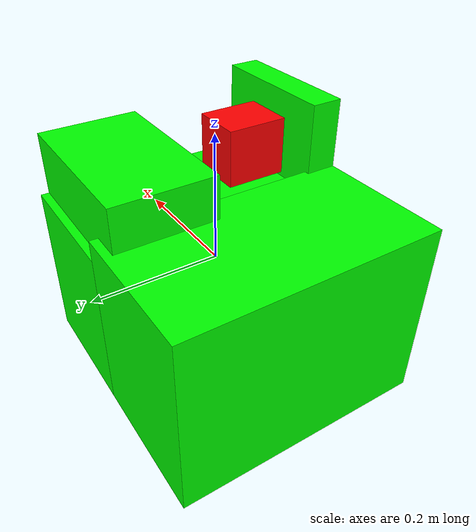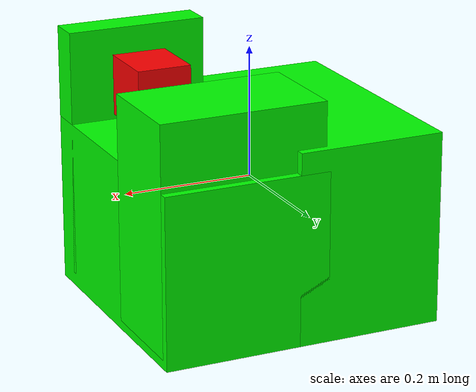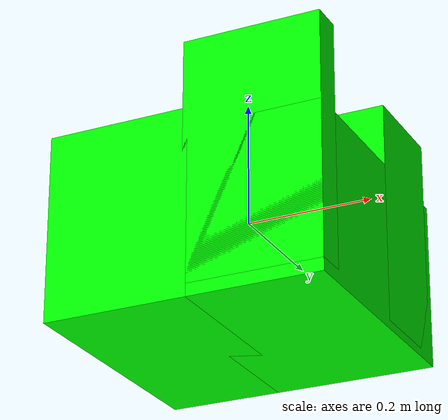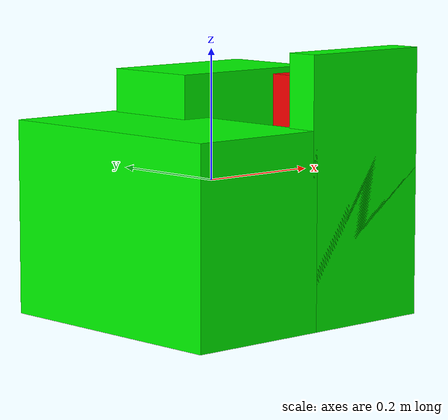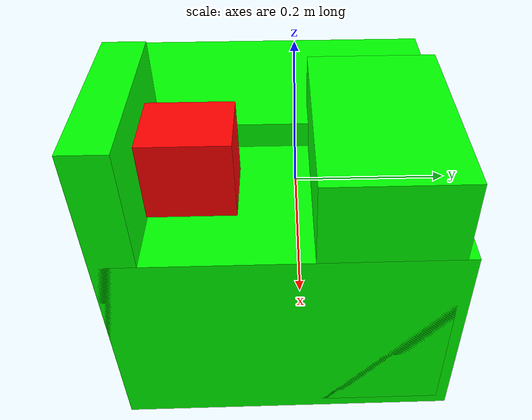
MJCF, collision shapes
<mujoco model="coffee_machine_25">
  <compiler autolimits="true" boundmass="0.01" angle="radian"/>
  <default>
    <default class="/">
      <default class="__VISUAL_MJT__">
        <geom contype="0" conaffinity="0" group="0"/>
      </default>
      <default class="__STRUCTURAL_MJT__">
        <geom contype="8" conaffinity="15" group="4" friction="0.90000000000000002 0.90000000000000002 0.001" solref="0.025000000000000001 1" solimp="0.998 0.998 0.001"/>
      </default>
      <default class="__DYNAMIC_MJT__">
        <geom contype="1" conaffinity="15" group="4" friction="0.90000000000000002 0.90000000000000002 0.001" solref="0.025000000000000001 1" solimp="0.998 0.998 0.001"/>
      </default>
    </default>
  </default>
  <asset>
    <material name="material_coffee_machine_backup_mat" class="/" specular="0.5" shininess="0.5" rgba="0.5 0.5 0.5 1"/>
    <material name="material_Coffee_Machine_Readout_Mat_Off" class="/" specular="0.5" shininess="0.5" rgba="0 0 0 1"/>
    <texture name="Coffee_Machine_Decal_Mat" type="2d" file="Coffee_Machine_Decal_AlbedoTransparency.png"/>
    <material name="material_Coffee_Machine_Decal_Mat" class="/" texture="Coffee_Machine_Decal_Mat" specular="0.5" shininess="0.5" rgba="1 1 1 1"/>
    <texture name="Coffee_Machine_Metal_Mat" type="2d" file="MetalBumpy_AlbedoTransparency.png"/>
    <material name="material_Coffee_Machine_Metal_Mat" class="/" texture="Coffee_Machine_Metal_Mat" specular="0.5" shininess="0.5" rgba="0.66176469999999998 0.66176469999999998 0.66176469999999998 1"/>
    <texture name="Coffee_Machine_Secondary5_Color_Mat" type="2d" file="BrushedIron_AlbedoTransparency.png"/>
    <material name="material_Coffee_Machine_Secondary5_Color_Mat" class="/" texture="Coffee_Machine_Secondary5_Color_Mat" specular="0.5" shininess="0.5" rgba="0.55147060000000003 0.55147060000000003 0.55147060000000003 1"/>
    <texture name="Coffee_Machine_Primary5_Color_Mat" type="2d" file="BrushedAluminum_AlbedoTransparency.png"/>
    <material name="material_Coffee_Machine_Primary5_Color_Mat" class="/" texture="Coffee_Machine_Primary5_Color_Mat" specular="0.5" shininess="0.5" rgba="0.32352940000000002 0.32352940000000002 0.32352940000000002 1"/>
    <mesh name="coffee_machine_25_coffee_machine_25_0" class="/" file="coffee_machine_25_coffee_machine_25/coffee_machine_25_coffee_machine_25_0.obj" scale="1 1 1"/>
    <mesh name="coffee_machine_25_coffee_machine_25_1" class="/" file="coffee_machine_25_coffee_machine_25/coffee_machine_25_coffee_machine_25_1.obj" scale="1 1 1"/>
    <mesh name="coffee_machine_25_coffee_machine_25_2" class="/" file="coffee_machine_25_coffee_machine_25/coffee_machine_25_coffee_machine_25_2.obj" scale="1 1 1"/>
    <mesh name="coffee_machine_25_coffee_machine_25_3" class="/" file="coffee_machine_25_coffee_machine_25/coffee_machine_25_coffee_machine_25_3.obj" scale="1 1 1"/>
    <mesh name="coffee_machine_25_coffee_machine_25_4" class="/" file="coffee_machine_25_coffee_machine_25/coffee_machine_25_coffee_machine_25_4.obj" scale="1 1 1"/>
    <mesh name="coffee_machine_25_coffee_machine_25_5" class="/" file="coffee_machine_25_coffee_machine_25/coffee_machine_25_coffee_machine_25_5.obj" scale="1 1 1"/>
  </asset>
  <worldbody>
    <body name="coffee_machine_25">
      <joint name="coffee_machine_25_free" class="/" type="free" pos="0 0 0" axis="0 0 1" stiffness="0" range="0 0" armature="0" damping="0.10000000000000001" frictionloss="0"/>
      <body name="coffee_machine_25_coffee_machine_25" pos="-0.00077999999999999999 -0.21872999966472387 -0.057149999999999999" quat="1 0 0 0">
        <geom name="coffee_machine_25_coffee_machine_25_0" class="__VISUAL_MJT__" type="mesh" material="material_coffee_machine_backup_mat" shellinertia="true" mesh="coffee_machine_25_coffee_machine_25_0"/>
        <geom name="coffee_machine_25_coffee_machine_25_1" class="__VISUAL_MJT__" type="mesh" material="material_Coffee_Machine_Readout_Mat_Off" shellinertia="false" mesh="coffee_machine_25_coffee_machine_25_1"/>
        <geom name="coffee_machine_25_coffee_machine_25_2" class="__VISUAL_MJT__" type="mesh" material="material_Coffee_Machine_Decal_Mat" shellinertia="false" mesh="coffee_machine_25_coffee_machine_25_2"/>
        <geom name="coffee_machine_25_coffee_machine_25_3" class="__VISUAL_MJT__" type="mesh" material="material_Coffee_Machine_Metal_Mat" shellinertia="false" mesh="coffee_machine_25_coffee_machine_25_3"/>
        <geom name="coffee_machine_25_coffee_machine_25_4" class="__VISUAL_MJT__" type="mesh" material="material_Coffee_Machine_Secondary5_Color_Mat" shellinertia="false" mesh="coffee_machine_25_coffee_machine_25_4"/>
        <geom name="coffee_machine_25_coffee_machine_25_5" class="__VISUAL_MJT__" type="mesh" material="material_Coffee_Machine_Primary5_Color_Mat" shellinertia="false" mesh="coffee_machine_25_coffee_machine_25_5"/>
        <site name="coffee_machine_25_Receptacle_0" class="/" type="box" rgba="1 0 0 1" size="0.042367100715637207 0.049957484006881714 0.046831373125314713" pos="0.10760000348091125 0.10145748406648636 0.17239999771118164" quat="1 0 0 0"/>
        <geom name="coffee_machine_25_PrimitiveCollider_0" class="__DYNAMIC_MJT__" type="box" size="0.11376094818115234 0.20372840762138367 0.14819712936878204" rgba="0 1 0 1" pos="-0.10603904724121094 0.20372840762138367 0.002195402979850769" quat="1 0 0 0"/>
        <geom name="coffee_machine_25_PrimitiveCollider_1" class="__DYNAMIC_MJT__" type="box" size="0.12836575508117676 0.20372840762138367 0.13157792389392853" rgba="0 1 0 1" pos="0.089866876602172852 0.20372840762138367 -0.014423802495002747" quat="1 0 0 0"/>
        <geom name="coffee_machine_25_PrimitiveCollider_2" class="__DYNAMIC_MJT__" type="box" size="0.10908126831054688 0.024975895881652832 0.19314002990722656" rgba="0 1 0 1" pos="0.10915136337280273 0.024975895881652832 0.067164421081542969" quat="1 0 0 0"/>
        <geom name="coffee_machine_25_PrimitiveCollider_3" class="__DYNAMIC_MJT__" type="box" size="0.12836575508117676 0.079491674900054932 0.1753389835357666" rgba="0 1 0 1" pos="0.089866876602172852 0.31461429595947266 0.042688131332397461" quat="1 0 0 0"/>
      </body>
    </body>
  </worldbody>
</mujoco>
